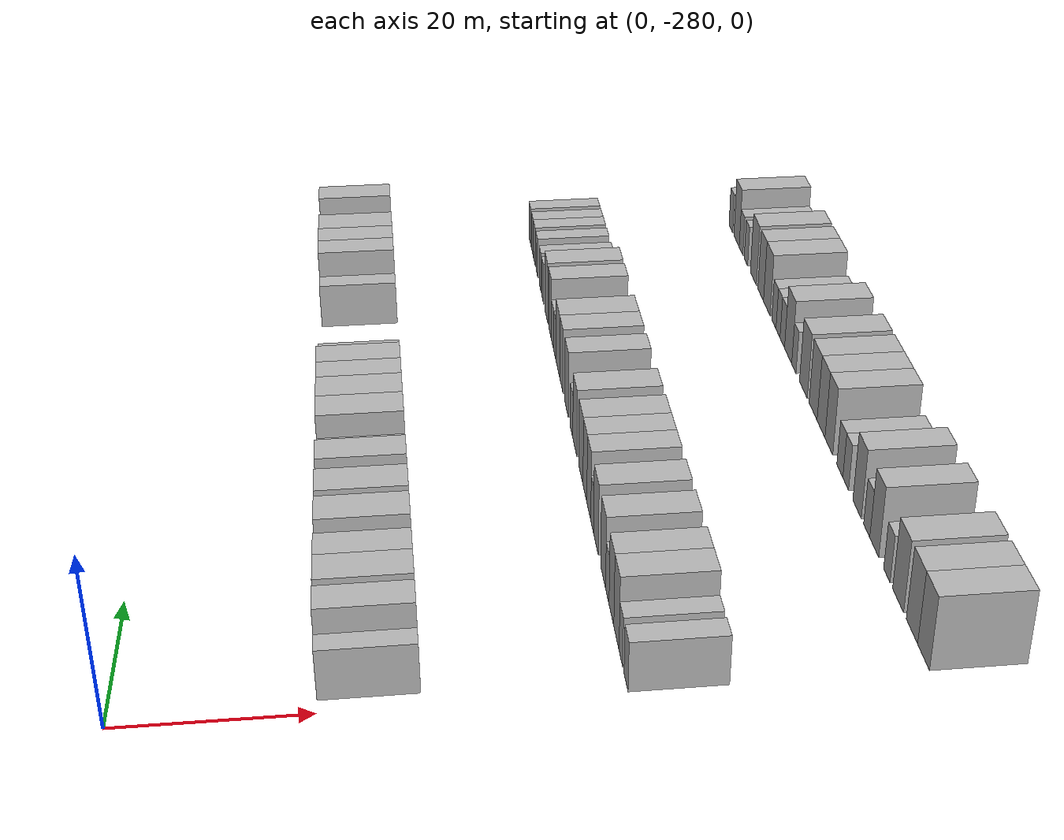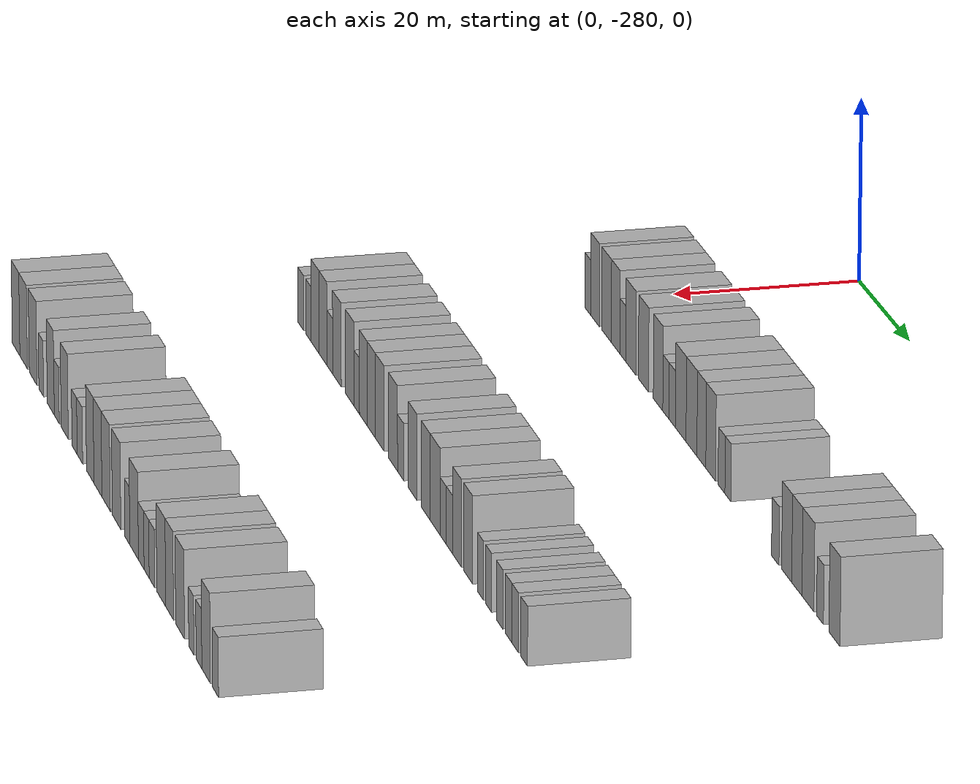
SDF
<sdf version="1.6">
 <world name="default">
  <model name="building_1">
   <static>1</static>
   <pose>25.0000 -276.7250 0 0.000000 0.000000 0.000000</pose>
   <link name="link">
    <pose>0 0 3.00 0 0 0</pose>
    <collision name="collision"><geometry><box><size>10.0000 2.5499 6.0000</size></box></geometry></collision>
    <visual name="visual">
     <cast_shadows>0</cast_shadows>
     <geometry><box><size>10.0000 2.5499 6.0000</size></box></geometry>
     <material>
      <script>
       <uri>model://HANNAS_wall/materials/scripts</uri>
       <uri>model://HANNAS_wall/materials/textures</uri>
       <name>vrc/HANNAS_wall</name>
      </script>
     </material>
    </visual>
   </link>
  </model>
  <model name="building_2">
   <static>1</static>
   <pose>25.0000 -273.5485 0 0.000000 0.000000 0.000000</pose>
   <link name="link">
    <pose>0 0 4.50 0 0 0</pose>
    <collision name="collision"><geometry><box><size>10.0000 3.8032 9.0000</size></box></geometry></collision>
    <visual name="visual">
     <cast_shadows>0</cast_shadows>
     <geometry><box><size>10.0000 3.8032 9.0000</size></box></geometry>
     <material>
      <script>
       <uri>model://HANNAS_wall/materials/scripts</uri>
       <uri>model://HANNAS_wall/materials/textures</uri>
       <name>vrc/HANNAS_wall</name>
      </script>
     </material>
    </visual>
   </link>
  </model>
  <model name="building_3">
   <static>1</static>
   <pose>25.0000 -268.5318 0 0.000000 0.000000 0.000000</pose>
   <link name="link">
    <pose>0 0 4.50 0 0 0</pose>
    <collision name="collision"><geometry><box><size>10.0000 4.2303 9.0000</size></box></geometry></collision>
    <visual name="visual">
     <cast_shadows>0</cast_shadows>
     <geometry><box><size>10.0000 4.2303 9.0000</size></box></geometry>
     <material>
      <script>
       <uri>model://HANNAS_wall/materials/scripts</uri>
       <uri>model://HANNAS_wall/materials/textures</uri>
       <name>vrc/HANNAS_wall</name>
      </script>
     </material>
    </visual>
   </link>
  </model>
  <model name="building_4">
   <static>1</static>
   <pose>25.0000 -264.5383 0 0.000000 0.000000 0.000000</pose>
   <link name="link">
    <pose>0 0 4.50 0 0 0</pose>
    <collision name="collision"><geometry><box><size>10.0000 3.7567 9.0000</size></box></geometry></collision>
    <visual name="visual">
     <cast_shadows>0</cast_shadows>
     <geometry><box><size>10.0000 3.7567 9.0000</size></box></geometry>
     <material>
      <script>
       <uri>model://HANNAS_wall/materials/scripts</uri>
       <uri>model://HANNAS_wall/materials/textures</uri>
       <name>vrc/HANNAS_wall</name>
      </script>
     </material>
    </visual>
   </link>
  </model>
  <model name="building_5">
   <static>1</static>
   <pose>25.0000 -261.4245 0 0.000000 0.000000 0.000000</pose>
   <link name="link">
    <pose>0 0 3.00 0 0 0</pose>
    <collision name="collision"><geometry><box><size>10.0000 2.4708 6.0000</size></box></geometry></collision>
    <visual name="visual">
     <cast_shadows>0</cast_shadows>
     <geometry><box><size>10.0000 2.4708 6.0000</size></box></geometry>
     <material>
      <script>
       <uri>model://HANNAS_wall/materials/scripts</uri>
       <uri>model://HANNAS_wall/materials/textures</uri>
       <name>vrc/HANNAS_wall</name>
      </script>
     </material>
    </visual>
   </link>
  </model>
  <model name="building_6">
   <static>1</static>
   <pose>25.0000 -257.9877 0 0.000000 0.000000 0.000000</pose>
   <link name="link">
    <pose>0 0 4.50 0 0 0</pose>
    <collision name="collision"><geometry><box><size>10.0000 4.4028 9.0000</size></box></geometry></collision>
    <visual name="visual">
     <cast_shadows>0</cast_shadows>
     <geometry><box><size>10.0000 4.4028 9.0000</size></box></geometry>
     <material>
      <script>
       <uri>model://HANNAS_wall/materials/scripts</uri>
       <uri>model://HANNAS_wall/materials/textures</uri>
       <name>vrc/HANNAS_wall</name>
      </script>
     </material>
    </visual>
   </link>
  </model>
  <model name="building_7">
   <static>1</static>
   <pose>25.0000 -252.6310 0 0.000000 0.000000 0.000000</pose>
   <link name="link">
    <pose>0 0 4.50 0 0 0</pose>
    <collision name="collision"><geometry><box><size>10.0000 4.3106 9.0000</size></box></geometry></collision>
    <visual name="visual">
     <cast_shadows>0</cast_shadows>
     <geometry><box><size>10.0000 4.3106 9.0000</size></box></geometry>
     <material>
      <script>
       <uri>model://HANNAS_wall/materials/scripts</uri>
       <uri>model://HANNAS_wall/materials/textures</uri>
       <name>vrc/HANNAS_wall</name>
      </script>
     </material>
    </visual>
   </link>
  </model>
  <model name="building_8">
   <static>1</static>
   <pose>25.0000 -246.4828 0 0.000000 0.000000 0.000000</pose>
   <link name="link">
    <pose>0 0 4.50 0 0 0</pose>
    <collision name="collision"><geometry><box><size>10.0000 3.9860 9.0000</size></box></geometry></collision>
    <visual name="visual">
     <cast_shadows>0</cast_shadows>
     <geometry><box><size>10.0000 3.9860 9.0000</size></box></geometry>
     <material>
      <script>
       <uri>model://HANNAS_wall/materials/scripts</uri>
       <uri>model://HANNAS_wall/materials/textures</uri>
       <name>vrc/HANNAS_wall</name>
      </script>
     </material>
    </visual>
   </link>
  </model>
  <model name="building_9">
   <static>1</static>
   <pose>25.0000 -243.1892 0 0.000000 0.000000 0.000000</pose>
   <link name="link">
    <pose>0 0 3.00 0 0 0</pose>
    <collision name="collision"><geometry><box><size>10.0000 2.6011 6.0000</size></box></geometry></collision>
    <visual name="visual">
     <cast_shadows>0</cast_shadows>
     <geometry><box><size>10.0000 2.6011 6.0000</size></box></geometry>
     <material>
      <script>
       <uri>model://HANNAS_wall/materials/scripts</uri>
       <uri>model://HANNAS_wall/materials/textures</uri>
       <name>vrc/HANNAS_wall</name>
      </script>
     </material>
    </visual>
   </link>
  </model>
  <model name="building_10">
   <static>1</static>
   <pose>25.0000 -240.5972 0 0.000000 0.000000 0.000000</pose>
   <link name="link">
    <pose>0 0 3.00 0 0 0</pose>
    <collision name="collision"><geometry><box><size>10.0000 2.5830 6.0000</size></box></geometry></collision>
    <visual name="visual">
     <cast_shadows>0</cast_shadows>
     <geometry><box><size>10.0000 2.5830 6.0000</size></box></geometry>
     <material>
      <script>
       <uri>model://HANNAS_wall/materials/scripts</uri>
       <uri>model://HANNAS_wall/materials/textures</uri>
       <name>vrc/HANNAS_wall</name>
      </script>
     </material>
    </visual>
   </link>
  </model>
  <model name="building_11">
   <static>1</static>
   <pose>25.0000 -237.0894 0 0.000000 0.000000 0.000000</pose>
   <link name="link">
    <pose>0 0 4.50 0 0 0</pose>
    <collision name="collision"><geometry><box><size>10.0000 4.4326 9.0000</size></box></geometry></collision>
    <visual name="visual">
     <cast_shadows>0</cast_shadows>
     <geometry><box><size>10.0000 4.4326 9.0000</size></box></geometry>
     <material>
      <script>
       <uri>model://HANNAS_wall/materials/scripts</uri>
       <uri>model://HANNAS_wall/materials/textures</uri>
       <name>vrc/HANNAS_wall</name>
      </script>
     </material>
    </visual>
   </link>
  </model>
  <model name="building_12">
   <static>1</static>
   <pose>25.0000 -232.6515 0 0.000000 0.000000 0.000000</pose>
   <link name="link">
    <pose>0 0 4.50 0 0 0</pose>
    <collision name="collision"><geometry><box><size>10.0000 4.4432 9.0000</size></box></geometry></collision>
    <visual name="visual">
     <cast_shadows>0</cast_shadows>
     <geometry><box><size>10.0000 4.4432 9.0000</size></box></geometry>
     <material>
      <script>
       <uri>model://HANNAS_wall/materials/scripts</uri>
       <uri>model://HANNAS_wall/materials/textures</uri>
       <name>vrc/HANNAS_wall</name>
      </script>
     </material>
    </visual>
   </link>
  </model>
  <model name="building_13">
   <static>1</static>
   <pose>25.0000 -228.6149 0 0.000000 0.000000 0.000000</pose>
   <link name="link">
    <pose>0 0 4.50 0 0 0</pose>
    <collision name="collision"><geometry><box><size>10.0000 3.6301 9.0000</size></box></geometry></collision>
    <visual name="visual">
     <cast_shadows>0</cast_shadows>
     <geometry><box><size>10.0000 3.6301 9.0000</size></box></geometry>
     <material>
      <script>
       <uri>model://HANNAS_wall/materials/scripts</uri>
       <uri>model://HANNAS_wall/materials/textures</uri>
       <name>vrc/HANNAS_wall</name>
      </script>
     </material>
    </visual>
   </link>
  </model>
  <model name="building_14">
   <static>1</static>
   <pose>25.0000 -224.8320 0 0.000000 0.000000 0.000000</pose>
   <link name="link">
    <pose>0 0 4.50 0 0 0</pose>
    <collision name="collision"><geometry><box><size>10.0000 3.9356 9.0000</size></box></geometry></collision>
    <visual name="visual">
     <cast_shadows>0</cast_shadows>
     <geometry><box><size>10.0000 3.9356 9.0000</size></box></geometry>
     <material>
      <script>
       <uri>model://HANNAS_wall/materials/scripts</uri>
       <uri>model://HANNAS_wall/materials/textures</uri>
       <name>vrc/HANNAS_wall</name>
      </script>
     </material>
    </visual>
   </link>
  </model>
  <model name="building_15">
   <static>1</static>
   <pose>25.0000 -220.4967 0 0.000000 0.000000 0.000000</pose>
   <link name="link">
    <pose>0 0 3.00 0 0 0</pose>
    <collision name="collision"><geometry><box><size>10.0000 2.7349 6.0000</size></box></geometry></collision>
    <visual name="visual">
     <cast_shadows>0</cast_shadows>
     <geometry><box><size>10.0000 2.7349 6.0000</size></box></geometry>
     <material>
      <script>
       <uri>model://HANNAS_wall/materials/scripts</uri>
       <uri>model://HANNAS_wall/materials/textures</uri>
       <name>vrc/HANNAS_wall</name>
      </script>
     </material>
    </visual>
   </link>
  </model>
  <model name="building_16">
   <static>1</static>
   <pose>25.0000 -217.9195 0 0.000000 0.000000 0.000000</pose>
   <link name="link">
    <pose>0 0 3.00 0 0 0</pose>
    <collision name="collision"><geometry><box><size>10.0000 2.4194 6.0000</size></box></geometry></collision>
    <visual name="visual">
     <cast_shadows>0</cast_shadows>
     <geometry><box><size>10.0000 2.4194 6.0000</size></box></geometry>
     <material>
      <script>
       <uri>model://HANNAS_wall/materials/scripts</uri>
       <uri>model://HANNAS_wall/materials/textures</uri>
       <name>vrc/HANNAS_wall</name>
      </script>
     </material>
    </visual>
   </link>
  </model>
  <model name="building_17">
   <static>1</static>
   <pose>25.0000 -199.4089 0 0.000000 0.000000 0.000000</pose>
   <link name="link">
    <pose>0 0 3.00 0 0 0</pose>
    <collision name="collision"><geometry><box><size>10.0000 2.8673 6.0000</size></box></geometry></collision>
    <visual name="visual">
     <cast_shadows>0</cast_shadows>
     <geometry><box><size>10.0000 2.8673 6.0000</size></box></geometry>
     <material>
      <script>
       <uri>model://HANNAS_wall/materials/scripts</uri>
       <uri>model://HANNAS_wall/materials/textures</uri>
       <name>vrc/HANNAS_wall</name>
      </script>
     </material>
    </visual>
   </link>
  </model>
  <model name="building_18">
   <static>1</static>
   <pose>25.0000 -195.0465 0 0.000000 0.000000 0.000000</pose>
   <link name="link">
    <pose>0 0 4.50 0 0 0</pose>
    <collision name="collision"><geometry><box><size>10.0000 3.8573 9.0000</size></box></geometry></collision>
    <visual name="visual">
     <cast_shadows>0</cast_shadows>
     <geometry><box><size>10.0000 3.8573 9.0000</size></box></geometry>
     <material>
      <script>
       <uri>model://HANNAS_wall/materials/scripts</uri>
       <uri>model://HANNAS_wall/materials/textures</uri>
       <name>vrc/HANNAS_wall</name>
      </script>
     </material>
    </visual>
   </link>
  </model>
  <model name="building_19">
   <static>1</static>
   <pose>25.0000 -191.1698 0 0.000000 0.000000 0.000000</pose>
   <link name="link">
    <pose>0 0 4.50 0 0 0</pose>
    <collision name="collision"><geometry><box><size>10.0000 3.8960 9.0000</size></box></geometry></collision>
    <visual name="visual">
     <cast_shadows>0</cast_shadows>
     <geometry><box><size>10.0000 3.8960 9.0000</size></box></geometry>
     <material>
      <script>
       <uri>model://HANNAS_wall/materials/scripts</uri>
       <uri>model://HANNAS_wall/materials/textures</uri>
       <name>vrc/HANNAS_wall</name>
      </script>
     </material>
    </visual>
   </link>
  </model>
  <model name="building_20">
   <static>1</static>
   <pose>25.0000 -186.9760 0 0.000000 0.000000 0.000000</pose>
   <link name="link">
    <pose>0 0 4.50 0 0 0</pose>
    <collision name="collision"><geometry><box><size>10.0000 4.4915 9.0000</size></box></geometry></collision>
    <visual name="visual">
     <cast_shadows>0</cast_shadows>
     <geometry><box><size>10.0000 4.4915 9.0000</size></box></geometry>
     <material>
      <script>
       <uri>model://HANNAS_wall/materials/scripts</uri>
       <uri>model://HANNAS_wall/materials/textures</uri>
       <name>vrc/HANNAS_wall</name>
      </script>
     </material>
    </visual>
   </link>
  </model>
  <model name="building_21">
   <static>1</static>
   <pose>25.0000 -182.4449 0 0.000000 0.000000 0.000000</pose>
   <link name="link">
    <pose>0 0 3.00 0 0 0</pose>
    <collision name="collision"><geometry><box><size>10.0000 2.5707 6.0000</size></box></geometry></collision>
    <visual name="visual">
     <cast_shadows>0</cast_shadows>
     <geometry><box><size>10.0000 2.5707 6.0000</size></box></geometry>
     <material>
      <script>
       <uri>model://HANNAS_wall/materials/scripts</uri>
       <uri>model://HANNAS_wall/materials/textures</uri>
       <name>vrc/HANNAS_wall</name>
      </script>
     </material>
    </visual>
   </link>
  </model>
  <model name="building_22">
   <static>1</static>
   <pose>25.0000 -177.0999 0 0.000000 0.000000 0.000000</pose>
   <link name="link">
    <pose>0 0 4.50 0 0 0</pose>
    <collision name="collision"><geometry><box><size>10.0000 4.1193 9.0000</size></box></geometry></collision>
    <visual name="visual">
     <cast_shadows>0</cast_shadows>
     <geometry><box><size>10.0000 4.1193 9.0000</size></box></geometry>
     <material>
      <script>
       <uri>model://HANNAS_wall/materials/scripts</uri>
       <uri>model://HANNAS_wall/materials/textures</uri>
       <name>vrc/HANNAS_wall</name>
      </script>
     </material>
    </visual>
   </link>
  </model>
  <model name="building_140">
   <static>1</static>
   <pose>55.0000 -278.5639 0 0.000000 0.000000 0.000000</pose>
   <link name="link">
    <pose>0 0 3.00 0 0 0</pose>
    <collision name="collision"><geometry><box><size>10.0000 2.8722 6.0000</size></box></geometry></collision>
    <visual name="visual">
     <cast_shadows>0</cast_shadows>
     <geometry><box><size>10.0000 2.8722 6.0000</size></box></geometry>
     <material>
      <script>
       <uri>model://HANNAS_wall/materials/scripts</uri>
       <uri>model://HANNAS_wall/materials/textures</uri>
       <name>vrc/HANNAS_wall</name>
      </script>
     </material>
    </visual>
   </link>
  </model>
  <model name="building_141">
   <static>1</static>
   <pose>55.0000 -274.8090 0 0.000000 0.000000 0.000000</pose>
   <link name="link">
    <pose>0 0 3.00 0 0 0</pose>
    <collision name="collision"><geometry><box><size>10.0000 2.6376 6.0000</size></box></geometry></collision>
    <visual name="visual">
     <cast_shadows>0</cast_shadows>
     <geometry><box><size>10.0000 2.6376 6.0000</size></box></geometry>
     <material>
      <script>
       <uri>model://HANNAS_wall/materials/scripts</uri>
       <uri>model://HANNAS_wall/materials/textures</uri>
       <name>vrc/HANNAS_wall</name>
      </script>
     </material>
    </visual>
   </link>
  </model>
  <model name="building_142">
   <static>1</static>
   <pose>55.0000 -271.5252 0 0.000000 0.000000 0.000000</pose>
   <link name="link">
    <pose>0 0 4.50 0 0 0</pose>
    <collision name="collision"><geometry><box><size>10.0000 3.9299 9.0000</size></box></geometry></collision>
    <visual name="visual">
     <cast_shadows>0</cast_shadows>
     <geometry><box><size>10.0000 3.9299 9.0000</size></box></geometry>
     <material>
      <script>
       <uri>model://HANNAS_wall/materials/scripts</uri>
       <uri>model://HANNAS_wall/materials/textures</uri>
       <name>vrc/HANNAS_wall</name>
      </script>
     </material>
    </visual>
   </link>
  </model>
  <model name="building_143">
   <static>1</static>
   <pose>55.0000 -267.6933 0 0.000000 0.000000 0.000000</pose>
   <link name="link">
    <pose>0 0 4.50 0 0 0</pose>
    <collision name="collision"><geometry><box><size>10.0000 3.7339 9.0000</size></box></geometry></collision>
    <visual name="visual">
     <cast_shadows>0</cast_shadows>
     <geometry><box><size>10.0000 3.7339 9.0000</size></box></geometry>
     <material>
      <script>
       <uri>model://HANNAS_wall/materials/scripts</uri>
       <uri>model://HANNAS_wall/materials/textures</uri>
       <name>vrc/HANNAS_wall</name>
      </script>
     </material>
    </visual>
   </link>
  </model>
  <model name="building_144">
   <static>1</static>
   <pose>55.0000 -264.4380 0 0.000000 0.000000 0.000000</pose>
   <link name="link">
    <pose>0 0 3.00 0 0 0</pose>
    <collision name="collision"><geometry><box><size>10.0000 2.7768 6.0000</size></box></geometry></collision>
    <visual name="visual">
     <cast_shadows>0</cast_shadows>
     <geometry><box><size>10.0000 2.7768 6.0000</size></box></geometry>
     <material>
      <script>
       <uri>model://HANNAS_wall/materials/scripts</uri>
       <uri>model://HANNAS_wall/materials/textures</uri>
       <name>vrc/HANNAS_wall</name>
      </script>
     </material>
    </visual>
   </link>
  </model>
  <model name="building_145">
   <static>1</static>
   <pose>55.0000 -261.0116 0 0.000000 0.000000 0.000000</pose>
   <link name="link">
    <pose>0 0 4.50 0 0 0</pose>
    <collision name="collision"><geometry><box><size>10.0000 4.0759 9.0000</size></box></geometry></collision>
    <visual name="visual">
     <cast_shadows>0</cast_shadows>
     <geometry><box><size>10.0000 4.0759 9.0000</size></box></geometry>
     <material>
      <script>
       <uri>model://HANNAS_wall/materials/scripts</uri>
       <uri>model://HANNAS_wall/materials/textures</uri>
       <name>vrc/HANNAS_wall</name>
      </script>
     </material>
    </visual>
   </link>
  </model>
  <model name="building_146">
   <static>1</static>
   <pose>55.0000 -254.9062 0 0.000000 0.000000 0.000000</pose>
   <link name="link">
    <pose>0 0 4.50 0 0 0</pose>
    <collision name="collision"><geometry><box><size>10.0000 4.1348 9.0000</size></box></geometry></collision>
    <visual name="visual">
     <cast_shadows>0</cast_shadows>
     <geometry><box><size>10.0000 4.1348 9.0000</size></box></geometry>
     <material>
      <script>
       <uri>model://HANNAS_wall/materials/scripts</uri>
       <uri>model://HANNAS_wall/materials/textures</uri>
       <name>vrc/HANNAS_wall</name>
      </script>
     </material>
    </visual>
   </link>
  </model>
  <model name="building_147">
   <static>1</static>
   <pose>55.0000 -251.5833 0 0.000000 0.000000 0.000000</pose>
   <link name="link">
    <pose>0 0 3.00 0 0 0</pose>
    <collision name="collision"><geometry><box><size>10.0000 2.5111 6.0000</size></box></geometry></collision>
    <visual name="visual">
     <cast_shadows>0</cast_shadows>
     <geometry><box><size>10.0000 2.5111 6.0000</size></box></geometry>
     <material>
      <script>
       <uri>model://HANNAS_wall/materials/scripts</uri>
       <uri>model://HANNAS_wall/materials/textures</uri>
       <name>vrc/HANNAS_wall</name>
      </script>
     </material>
    </visual>
   </link>
  </model>
  <model name="building_148">
   <static>1</static>
   <pose>55.0000 -248.5088 0 0.000000 0.000000 0.000000</pose>
   <link name="link">
    <pose>0 0 4.50 0 0 0</pose>
    <collision name="collision"><geometry><box><size>10.0000 3.6379 9.0000</size></box></geometry></collision>
    <visual name="visual">
     <cast_shadows>0</cast_shadows>
     <geometry><box><size>10.0000 3.6379 9.0000</size></box></geometry>
     <material>
      <script>
       <uri>model://HANNAS_wall/materials/scripts</uri>
       <uri>model://HANNAS_wall/materials/textures</uri>
       <name>vrc/HANNAS_wall</name>
      </script>
     </material>
    </visual>
   </link>
  </model>
  <model name="building_149">
   <static>1</static>
   <pose>55.0000 -244.8402 0 0.000000 0.000000 0.000000</pose>
   <link name="link">
    <pose>0 0 4.50 0 0 0</pose>
    <collision name="collision"><geometry><box><size>10.0000 3.6993 9.0000</size></box></geometry></collision>
    <visual name="visual">
     <cast_shadows>0</cast_shadows>
     <geometry><box><size>10.0000 3.6993 9.0000</size></box></geometry>
     <material>
      <script>
       <uri>model://HANNAS_wall/materials/scripts</uri>
       <uri>model://HANNAS_wall/materials/textures</uri>
       <name>vrc/HANNAS_wall</name>
      </script>
     </material>
    </visual>
   </link>
  </model>
  <model name="building_150">
   <static>1</static>
   <pose>55.0000 -240.9382 0 0.000000 0.000000 0.000000</pose>
   <link name="link">
    <pose>0 0 4.50 0 0 0</pose>
    <collision name="collision"><geometry><box><size>10.0000 4.1047 9.0000</size></box></geometry></collision>
    <visual name="visual">
     <cast_shadows>0</cast_shadows>
     <geometry><box><size>10.0000 4.1047 9.0000</size></box></geometry>
     <material>
      <script>
       <uri>model://HANNAS_wall/materials/scripts</uri>
       <uri>model://HANNAS_wall/materials/textures</uri>
       <name>vrc/HANNAS_wall</name>
      </script>
     </material>
    </visual>
   </link>
  </model>
  <model name="building_151">
   <static>1</static>
   <pose>55.0000 -234.8003 0 0.000000 0.000000 0.000000</pose>
   <link name="link">
    <pose>0 0 4.50 0 0 0</pose>
    <collision name="collision"><geometry><box><size>10.0000 4.1713 9.0000</size></box></geometry></collision>
    <visual name="visual">
     <cast_shadows>0</cast_shadows>
     <geometry><box><size>10.0000 4.1713 9.0000</size></box></geometry>
     <material>
      <script>
       <uri>model://HANNAS_wall/materials/scripts</uri>
       <uri>model://HANNAS_wall/materials/textures</uri>
       <name>vrc/HANNAS_wall</name>
      </script>
     </material>
    </visual>
   </link>
  </model>
  <model name="building_152">
   <static>1</static>
   <pose>55.0000 -231.2804 0 0.000000 0.000000 0.000000</pose>
   <link name="link">
    <pose>0 0 3.00 0 0 0</pose>
    <collision name="collision"><geometry><box><size>10.0000 2.8684 6.0000</size></box></geometry></collision>
    <visual name="visual">
     <cast_shadows>0</cast_shadows>
     <geometry><box><size>10.0000 2.8684 6.0000</size></box></geometry>
     <material>
      <script>
       <uri>model://HANNAS_wall/materials/scripts</uri>
       <uri>model://HANNAS_wall/materials/textures</uri>
       <name>vrc/HANNAS_wall</name>
      </script>
     </material>
    </visual>
   </link>
  </model>
  <model name="building_153">
   <static>1</static>
   <pose>55.0000 -225.8944 0 0.000000 0.000000 0.000000</pose>
   <link name="link">
    <pose>0 0 4.50 0 0 0</pose>
    <collision name="collision"><geometry><box><size>10.0000 3.9038 9.0000</size></box></geometry></collision>
    <visual name="visual">
     <cast_shadows>0</cast_shadows>
     <geometry><box><size>10.0000 3.9038 9.0000</size></box></geometry>
     <material>
      <script>
       <uri>model://HANNAS_wall/materials/scripts</uri>
       <uri>model://HANNAS_wall/materials/textures</uri>
       <name>vrc/HANNAS_wall</name>
      </script>
     </material>
    </visual>
   </link>
  </model>
  <model name="building_154">
   <static>1</static>
   <pose>55.0000 -220.0046 0 0.000000 0.000000 0.000000</pose>
   <link name="link">
    <pose>0 0 4.50 0 0 0</pose>
    <collision name="collision"><geometry><box><size>10.0000 3.8757 9.0000</size></box></geometry></collision>
    <visual name="visual">
     <cast_shadows>0</cast_shadows>
     <geometry><box><size>10.0000 3.8757 9.0000</size></box></geometry>
     <material>
      <script>
       <uri>model://HANNAS_wall/materials/scripts</uri>
       <uri>model://HANNAS_wall/materials/textures</uri>
       <name>vrc/HANNAS_wall</name>
      </script>
     </material>
    </visual>
   </link>
  </model>
  <model name="building_155">
   <static>1</static>
   <pose>55.0000 -215.8731 0 0.000000 0.000000 0.000000</pose>
   <link name="link">
    <pose>0 0 4.50 0 0 0</pose>
    <collision name="collision"><geometry><box><size>10.0000 4.3874 9.0000</size></box></geometry></collision>
    <visual name="visual">
     <cast_shadows>0</cast_shadows>
     <geometry><box><size>10.0000 4.3874 9.0000</size></box></geometry>
     <material>
      <script>
       <uri>model://HANNAS_wall/materials/scripts</uri>
       <uri>model://HANNAS_wall/materials/textures</uri>
       <name>vrc/HANNAS_wall</name>
      </script>
     </material>
    </visual>
   </link>
  </model>
  <model name="building_156">
   <static>1</static>
   <pose>55.0000 -212.3606 0 0.000000 0.000000 0.000000</pose>
   <link name="link">
    <pose>0 0 3.00 0 0 0</pose>
    <collision name="collision"><geometry><box><size>10.0000 2.6376 6.0000</size></box></geometry></collision>
    <visual name="visual">
     <cast_shadows>0</cast_shadows>
     <geometry><box><size>10.0000 2.6376 6.0000</size></box></geometry>
     <material>
      <script>
       <uri>model://HANNAS_wall/materials/scripts</uri>
       <uri>model://HANNAS_wall/materials/textures</uri>
       <name>vrc/HANNAS_wall</name>
      </script>
     </material>
    </visual>
   </link>
  </model>
  <model name="building_157">
   <static>1</static>
   <pose>55.0000 -209.5592 0 0.000000 0.000000 0.000000</pose>
   <link name="link">
    <pose>0 0 3.00 0 0 0</pose>
    <collision name="collision"><geometry><box><size>10.0000 2.9651 6.0000</size></box></geometry></collision>
    <visual name="visual">
     <cast_shadows>0</cast_shadows>
     <geometry><box><size>10.0000 2.9651 6.0000</size></box></geometry>
     <material>
      <script>
       <uri>model://HANNAS_wall/materials/scripts</uri>
       <uri>model://HANNAS_wall/materials/textures</uri>
       <name>vrc/HANNAS_wall</name>
      </script>
     </material>
    </visual>
   </link>
  </model>
  <model name="building_158">
   <static>1</static>
   <pose>55.0000 -206.2237 0 0.000000 0.000000 0.000000</pose>
   <link name="link">
    <pose>0 0 4.50 0 0 0</pose>
    <collision name="collision"><geometry><box><size>10.0000 3.7059 9.0000</size></box></geometry></collision>
    <visual name="visual">
     <cast_shadows>0</cast_shadows>
     <geometry><box><size>10.0000 3.7059 9.0000</size></box></geometry>
     <material>
      <script>
       <uri>model://HANNAS_wall/materials/scripts</uri>
       <uri>model://HANNAS_wall/materials/textures</uri>
       <name>vrc/HANNAS_wall</name>
      </script>
     </material>
    </visual>
   </link>
  </model>
  <model name="building_159">
   <static>1</static>
   <pose>55.0000 -201.4409 0 0.000000 0.000000 0.000000</pose>
   <link name="link">
    <pose>0 0 4.50 0 0 0</pose>
    <collision name="collision"><geometry><box><size>10.0000 3.8598 9.0000</size></box></geometry></collision>
    <visual name="visual">
     <cast_shadows>0</cast_shadows>
     <geometry><box><size>10.0000 3.8598 9.0000</size></box></geometry>
     <material>
      <script>
       <uri>model://HANNAS_wall/materials/scripts</uri>
       <uri>model://HANNAS_wall/materials/textures</uri>
       <name>vrc/HANNAS_wall</name>
      </script>
     </material>
    </visual>
   </link>
  </model>
  <model name="building_160">
   <static>1</static>
   <pose>55.0000 -196.2289 0 0.000000 0.000000 0.000000</pose>
   <link name="link">
    <pose>0 0 3.00 0 0 0</pose>
    <collision name="collision"><geometry><box><size>10.0000 2.5640 6.0000</size></box></geometry></collision>
    <visual name="visual">
     <cast_shadows>0</cast_shadows>
     <geometry><box><size>10.0000 2.5640 6.0000</size></box></geometry>
     <material>
      <script>
       <uri>model://HANNAS_wall/materials/scripts</uri>
       <uri>model://HANNAS_wall/materials/textures</uri>
       <name>vrc/HANNAS_wall</name>
      </script>
     </material>
    </visual>
   </link>
  </model>
  <model name="building_161">
   <static>1</static>
   <pose>55.0000 -192.7100 0 0.000000 0.000000 0.000000</pose>
   <link name="link">
    <pose>0 0 3.00 0 0 0</pose>
    <collision name="collision"><geometry><box><size>10.0000 2.4739 6.0000</size></box></geometry></collision>
    <visual name="visual">
     <cast_shadows>0</cast_shadows>
     <geometry><box><size>10.0000 2.4739 6.0000</size></box></geometry>
     <material>
      <script>
       <uri>model://HANNAS_wall/materials/scripts</uri>
       <uri>model://HANNAS_wall/materials/textures</uri>
       <name>vrc/HANNAS_wall</name>
      </script>
     </material>
    </visual>
   </link>
  </model>
  <model name="building_162">
   <static>1</static>
   <pose>55.0000 -188.1226 0 0.000000 0.000000 0.000000</pose>
   <link name="link">
    <pose>0 0 3.00 0 0 0</pose>
    <collision name="collision"><geometry><box><size>10.0000 2.7008 6.0000</size></box></geometry></collision>
    <visual name="visual">
     <cast_shadows>0</cast_shadows>
     <geometry><box><size>10.0000 2.7008 6.0000</size></box></geometry>
     <material>
      <script>
       <uri>model://HANNAS_wall/materials/scripts</uri>
       <uri>model://HANNAS_wall/materials/textures</uri>
       <name>vrc/HANNAS_wall</name>
      </script>
     </material>
    </visual>
   </link>
  </model>
  <model name="building_163">
   <static>1</static>
   <pose>55.0000 -184.3727 0 0.000000 0.000000 0.000000</pose>
   <link name="link">
    <pose>0 0 3.00 0 0 0</pose>
    <collision name="collision"><geometry><box><size>10.0000 2.7990 6.0000</size></box></geometry></collision>
    <visual name="visual">
     <cast_shadows>0</cast_shadows>
     <geometry><box><size>10.0000 2.7990 6.0000</size></box></geometry>
     <material>
      <script>
       <uri>model://HANNAS_wall/materials/scripts</uri>
       <uri>model://HANNAS_wall/materials/textures</uri>
       <name>vrc/HANNAS_wall</name>
      </script>
     </material>
    </visual>
   </link>
  </model>
  <model name="building_164">
   <static>1</static>
   <pose>55.0000 -181.6175 0 0.000000 0.000000 0.000000</pose>
   <link name="link">
    <pose>0 0 3.00 0 0 0</pose>
    <collision name="collision"><geometry><box><size>10.0000 2.7114 6.0000</size></box></geometry></collision>
    <visual name="visual">
     <cast_shadows>0</cast_shadows>
     <geometry><box><size>10.0000 2.7114 6.0000</size></box></geometry>
     <material>
      <script>
       <uri>model://HANNAS_wall/materials/scripts</uri>
       <uri>model://HANNAS_wall/materials/textures</uri>
       <name>vrc/HANNAS_wall</name>
      </script>
     </material>
    </visual>
   </link>
  </model>
  <model name="building_165">
   <static>1</static>
   <pose>55.0000 -177.8883 0 0.000000 0.000000 0.000000</pose>
   <link name="link">
    <pose>0 0 3.00 0 0 0</pose>
    <collision name="collision"><geometry><box><size>10.0000 2.7468 6.0000</size></box></geometry></collision>
    <visual name="visual">
     <cast_shadows>0</cast_shadows>
     <geometry><box><size>10.0000 2.7468 6.0000</size></box></geometry>
     <material>
      <script>
       <uri>model://HANNAS_wall/materials/scripts</uri>
       <uri>model://HANNAS_wall/materials/textures</uri>
       <name>vrc/HANNAS_wall</name>
      </script>
     </material>
    </visual>
   </link>
  </model>
  <model name="building_288">
   <static>1</static>
   <pose>85.0000 -277.8977 0 0.000000 0.000000 0.000000</pose>
   <link name="link">
    <pose>0 0 4.50 0 0 0</pose>
    <collision name="collision"><geometry><box><size>10.0000 4.2045 9.0000</size></box></geometry></collision>
    <visual name="visual">
     <cast_shadows>0</cast_shadows>
     <geometry><box><size>10.0000 4.2045 9.0000</size></box></geometry>
     <material>
      <script>
       <uri>model://HANNAS_wall/materials/scripts</uri>
       <uri>model://HANNAS_wall/materials/textures</uri>
       <name>vrc/HANNAS_wall</name>
      </script>
     </material>
    </visual>
   </link>
  </model>
  <model name="building_289">
   <static>1</static>
   <pose>85.0000 -273.6924 0 0.000000 0.000000 0.000000</pose>
   <link name="link">
    <pose>0 0 4.50 0 0 0</pose>
    <collision name="collision"><geometry><box><size>10.0000 4.2061 9.0000</size></box></geometry></collision>
    <visual name="visual">
     <cast_shadows>0</cast_shadows>
     <geometry><box><size>10.0000 4.2061 9.0000</size></box></geometry>
     <material>
      <script>
       <uri>model://HANNAS_wall/materials/scripts</uri>
       <uri>model://HANNAS_wall/materials/textures</uri>
       <name>vrc/HANNAS_wall</name>
      </script>
     </material>
    </visual>
   </link>
  </model>
  <model name="building_290">
   <static>1</static>
   <pose>85.0000 -268.4573 0 0.000000 0.000000 0.000000</pose>
   <link name="link">
    <pose>0 0 4.50 0 0 0</pose>
    <collision name="collision"><geometry><box><size>10.0000 4.2641 9.0000</size></box></geometry></collision>
    <visual name="visual">
     <cast_shadows>0</cast_shadows>
     <geometry><box><size>10.0000 4.2641 9.0000</size></box></geometry>
     <material>
      <script>
       <uri>model://HANNAS_wall/materials/scripts</uri>
       <uri>model://HANNAS_wall/materials/textures</uri>
       <name>vrc/HANNAS_wall</name>
      </script>
     </material>
    </visual>
   </link>
  </model>
  <model name="building_291">
   <static>1</static>
   <pose>85.0000 -264.0223 0 0.000000 0.000000 0.000000</pose>
   <link name="link">
    <pose>0 0 3.00 0 0 0</pose>
    <collision name="collision"><geometry><box><size>10.0000 2.6060 6.0000</size></box></geometry></collision>
    <visual name="visual">
     <cast_shadows>0</cast_shadows>
     <geometry><box><size>10.0000 2.6060 6.0000</size></box></geometry>
     <material>
      <script>
       <uri>model://HANNAS_wall/materials/scripts</uri>
       <uri>model://HANNAS_wall/materials/textures</uri>
       <name>vrc/HANNAS_wall</name>
      </script>
     </material>
    </visual>
   </link>
  </model>
  <model name="building_292">
   <static>1</static>
   <pose>85.0000 -258.8198 0 0.000000 0.000000 0.000000</pose>
   <link name="link">
    <pose>0 0 4.50 0 0 0</pose>
    <collision name="collision"><geometry><box><size>10.0000 3.7989 9.0000</size></box></geometry></collision>
    <visual name="visual">
     <cast_shadows>0</cast_shadows>
     <geometry><box><size>10.0000 3.7989 9.0000</size></box></geometry>
     <material>
      <script>
       <uri>model://HANNAS_wall/materials/scripts</uri>
       <uri>model://HANNAS_wall/materials/textures</uri>
       <name>vrc/HANNAS_wall</name>
      </script>
     </material>
    </visual>
   </link>
  </model>
  <model name="building_293">
   <static>1</static>
   <pose>85.0000 -255.5796 0 0.000000 0.000000 0.000000</pose>
   <link name="link">
    <pose>0 0 3.00 0 0 0</pose>
    <collision name="collision"><geometry><box><size>10.0000 2.6816 6.0000</size></box></geometry></collision>
    <visual name="visual">
     <cast_shadows>0</cast_shadows>
     <geometry><box><size>10.0000 2.6816 6.0000</size></box></geometry>
     <material>
      <script>
       <uri>model://HANNAS_wall/materials/scripts</uri>
       <uri>model://HANNAS_wall/materials/textures</uri>
       <name>vrc/HANNAS_wall</name>
      </script>
     </material>
    </visual>
   </link>
  </model>
  <model name="building_294">
   <static>1</static>
   <pose>85.0000 -251.3396 0 0.000000 0.000000 0.000000</pose>
   <link name="link">
    <pose>0 0 4.50 0 0 0</pose>
    <collision name="collision"><geometry><box><size>10.0000 3.7984 9.0000</size></box></geometry></collision>
    <visual name="visual">
     <cast_shadows>0</cast_shadows>
     <geometry><box><size>10.0000 3.7984 9.0000</size></box></geometry>
     <material>
      <script>
       <uri>model://HANNAS_wall/materials/scripts</uri>
       <uri>model://HANNAS_wall/materials/textures</uri>
       <name>vrc/HANNAS_wall</name>
      </script>
     </material>
    </visual>
   </link>
  </model>
  <model name="building_295">
   <static>1</static>
   <pose>85.0000 -246.0887 0 0.000000 0.000000 0.000000</pose>
   <link name="link">
    <pose>0 0 3.00 0 0 0</pose>
    <collision name="collision"><geometry><box><size>10.0000 2.7036 6.0000</size></box></geometry></collision>
    <visual name="visual">
     <cast_shadows>0</cast_shadows>
     <geometry><box><size>10.0000 2.7036 6.0000</size></box></geometry>
     <material>
      <script>
       <uri>model://HANNAS_wall/materials/scripts</uri>
       <uri>model://HANNAS_wall/materials/textures</uri>
       <name>vrc/HANNAS_wall</name>
      </script>
     </material>
    </visual>
   </link>
  </model>
  <model name="building_296">
   <static>1</static>
   <pose>85.0000 -243.2893 0 0.000000 0.000000 0.000000</pose>
   <link name="link">
    <pose>0 0 3.00 0 0 0</pose>
    <collision name="collision"><geometry><box><size>10.0000 2.8952 6.0000</size></box></geometry></collision>
    <visual name="visual">
     <cast_shadows>0</cast_shadows>
     <geometry><box><size>10.0000 2.8952 6.0000</size></box></geometry>
     <material>
      <script>
       <uri>model://HANNAS_wall/materials/scripts</uri>
       <uri>model://HANNAS_wall/materials/textures</uri>
       <name>vrc/HANNAS_wall</name>
      </script>
     </material>
    </visual>
   </link>
  </model>
  <model name="building_297">
   <static>1</static>
   <pose>85.0000 -237.8869 0 0.000000 0.000000 0.000000</pose>
   <link name="link">
    <pose>0 0 4.50 0 0 0</pose>
    <collision name="collision"><geometry><box><size>10.0000 3.9095 9.0000</size></box></geometry></collision>
    <visual name="visual">
     <cast_shadows>0</cast_shadows>
     <geometry><box><size>10.0000 3.9095 9.0000</size></box></geometry>
     <material>
      <script>
       <uri>model://HANNAS_wall/materials/scripts</uri>
       <uri>model://HANNAS_wall/materials/textures</uri>
       <name>vrc/HANNAS_wall</name>
      </script>
     </material>
    </visual>
   </link>
  </model>
  <model name="building_298">
   <static>1</static>
   <pose>85.0000 -233.8742 0 0.000000 0.000000 0.000000</pose>
   <link name="link">
    <pose>0 0 4.50 0 0 0</pose>
    <collision name="collision"><geometry><box><size>10.0000 4.1159 9.0000</size></box></geometry></collision>
    <visual name="visual">
     <cast_shadows>0</cast_shadows>
     <geometry><box><size>10.0000 4.1159 9.0000</size></box></geometry>
     <material>
      <script>
       <uri>model://HANNAS_wall/materials/scripts</uri>
       <uri>model://HANNAS_wall/materials/textures</uri>
       <name>vrc/HANNAS_wall</name>
      </script>
     </material>
    </visual>
   </link>
  </model>
  <model name="building_299">
   <static>1</static>
   <pose>85.0000 -229.6736 0 0.000000 0.000000 0.000000</pose>
   <link name="link">
    <pose>0 0 4.50 0 0 0</pose>
    <collision name="collision"><geometry><box><size>10.0000 4.2855 9.0000</size></box></geometry></collision>
    <visual name="visual">
     <cast_shadows>0</cast_shadows>
     <geometry><box><size>10.0000 4.2855 9.0000</size></box></geometry>
     <material>
      <script>
       <uri>model://HANNAS_wall/materials/scripts</uri>
       <uri>model://HANNAS_wall/materials/textures</uri>
       <name>vrc/HANNAS_wall</name>
      </script>
     </material>
    </visual>
   </link>
  </model>
  <model name="building_300">
   <static>1</static>
   <pose>85.0000 -224.3419 0 0.000000 0.000000 0.000000</pose>
   <link name="link">
    <pose>0 0 4.50 0 0 0</pose>
    <collision name="collision"><geometry><box><size>10.0000 4.3778 9.0000</size></box></geometry></collision>
    <visual name="visual">
     <cast_shadows>0</cast_shadows>
     <geometry><box><size>10.0000 4.3778 9.0000</size></box></geometry>
     <material>
      <script>
       <uri>model://HANNAS_wall/materials/scripts</uri>
       <uri>model://HANNAS_wall/materials/textures</uri>
       <name>vrc/HANNAS_wall</name>
      </script>
     </material>
    </visual>
   </link>
  </model>
  <model name="building_301">
   <static>1</static>
   <pose>85.0000 -218.8974 0 0.000000 0.000000 0.000000</pose>
   <link name="link">
    <pose>0 0 3.00 0 0 0</pose>
    <collision name="collision"><geometry><box><size>10.0000 2.5111 6.0000</size></box></geometry></collision>
    <visual name="visual">
     <cast_shadows>0</cast_shadows>
     <geometry><box><size>10.0000 2.5111 6.0000</size></box></geometry>
     <material>
      <script>
       <uri>model://HANNAS_wall/materials/scripts</uri>
       <uri>model://HANNAS_wall/materials/textures</uri>
       <name>vrc/HANNAS_wall</name>
      </script>
     </material>
    </visual>
   </link>
  </model>
  <model name="building_302">
   <static>1</static>
   <pose>85.0000 -215.4971 0 0.000000 0.000000 0.000000</pose>
   <link name="link">
    <pose>0 0 4.50 0 0 0</pose>
    <collision name="collision"><geometry><box><size>10.0000 4.2896 9.0000</size></box></geometry></collision>
    <visual name="visual">
     <cast_shadows>0</cast_shadows>
     <geometry><box><size>10.0000 4.2896 9.0000</size></box></geometry>
     <material>
      <script>
       <uri>model://HANNAS_wall/materials/scripts</uri>
       <uri>model://HANNAS_wall/materials/textures</uri>
       <name>vrc/HANNAS_wall</name>
      </script>
     </material>
    </visual>
   </link>
  </model>
  <model name="building_303">
   <static>1</static>
   <pose>85.0000 -211.9586 0 0.000000 0.000000 0.000000</pose>
   <link name="link">
    <pose>0 0 3.00 0 0 0</pose>
    <collision name="collision"><geometry><box><size>10.0000 2.7873 6.0000</size></box></geometry></collision>
    <visual name="visual">
     <cast_shadows>0</cast_shadows>
     <geometry><box><size>10.0000 2.7873 6.0000</size></box></geometry>
     <material>
      <script>
       <uri>model://HANNAS_wall/materials/scripts</uri>
       <uri>model://HANNAS_wall/materials/textures</uri>
       <name>vrc/HANNAS_wall</name>
      </script>
     </material>
    </visual>
   </link>
  </model>
  <model name="building_304">
   <static>1</static>
   <pose>85.0000 -209.3051 0 0.000000 0.000000 0.000000</pose>
   <link name="link">
    <pose>0 0 3.00 0 0 0</pose>
    <collision name="collision"><geometry><box><size>10.0000 2.5197 6.0000</size></box></geometry></collision>
    <visual name="visual">
     <cast_shadows>0</cast_shadows>
     <geometry><box><size>10.0000 2.5197 6.0000</size></box></geometry>
     <material>
      <script>
       <uri>model://HANNAS_wall/materials/scripts</uri>
       <uri>model://HANNAS_wall/materials/textures</uri>
       <name>vrc/HANNAS_wall</name>
      </script>
     </material>
    </visual>
   </link>
  </model>
  <model name="building_305">
   <static>1</static>
   <pose>85.0000 -206.6697 0 0.000000 0.000000 0.000000</pose>
   <link name="link">
    <pose>0 0 3.00 0 0 0</pose>
    <collision name="collision"><geometry><box><size>10.0000 2.7510 6.0000</size></box></geometry></collision>
    <visual name="visual">
     <cast_shadows>0</cast_shadows>
     <geometry><box><size>10.0000 2.7510 6.0000</size></box></geometry>
     <material>
      <script>
       <uri>model://HANNAS_wall/materials/scripts</uri>
       <uri>model://HANNAS_wall/materials/textures</uri>
       <name>vrc/HANNAS_wall</name>
      </script>
     </material>
    </visual>
   </link>
  </model>
  <model name="building_306">
   <static>1</static>
   <pose>85.0000 -202.1069 0 0.000000 0.000000 0.000000</pose>
   <link name="link">
    <pose>0 0 4.50 0 0 0</pose>
    <collision name="collision"><geometry><box><size>10.0000 4.3747 9.0000</size></box></geometry></collision>
    <visual name="visual">
     <cast_shadows>0</cast_shadows>
     <geometry><box><size>10.0000 4.3747 9.0000</size></box></geometry>
     <material>
      <script>
       <uri>model://HANNAS_wall/materials/scripts</uri>
       <uri>model://HANNAS_wall/materials/textures</uri>
       <name>vrc/HANNAS_wall</name>
      </script>
     </material>
    </visual>
   </link>
  </model>
  <model name="building_307">
   <static>1</static>
   <pose>85.0000 -198.0222 0 0.000000 0.000000 0.000000</pose>
   <link name="link">
    <pose>0 0 4.50 0 0 0</pose>
    <collision name="collision"><geometry><box><size>10.0000 3.7946 9.0000</size></box></geometry></collision>
    <visual name="visual">
     <cast_shadows>0</cast_shadows>
     <geometry><box><size>10.0000 3.7946 9.0000</size></box></geometry>
     <material>
      <script>
       <uri>model://HANNAS_wall/materials/scripts</uri>
       <uri>model://HANNAS_wall/materials/textures</uri>
       <name>vrc/HANNAS_wall</name>
      </script>
     </material>
    </visual>
   </link>
  </model>
  <model name="building_308">
   <static>1</static>
   <pose>85.0000 -193.0082 0 0.000000 0.000000 0.000000</pose>
   <link name="link">
    <pose>0 0 4.50 0 0 0</pose>
    <collision name="collision"><geometry><box><size>10.0000 4.2334 9.0000</size></box></geometry></collision>
    <visual name="visual">
     <cast_shadows>0</cast_shadows>
     <geometry><box><size>10.0000 4.2334 9.0000</size></box></geometry>
     <material>
      <script>
       <uri>model://HANNAS_wall/materials/scripts</uri>
       <uri>model://HANNAS_wall/materials/textures</uri>
       <name>vrc/HANNAS_wall</name>
      </script>
     </material>
    </visual>
   </link>
  </model>
  <model name="building_309">
   <static>1</static>
   <pose>85.0000 -187.6422 0 0.000000 0.000000 0.000000</pose>
   <link name="link">
    <pose>0 0 3.00 0 0 0</pose>
    <collision name="collision"><geometry><box><size>10.0000 2.4986 6.0000</size></box></geometry></collision>
    <visual name="visual">
     <cast_shadows>0</cast_shadows>
     <geometry><box><size>10.0000 2.4986 6.0000</size></box></geometry>
     <material>
      <script>
       <uri>model://HANNAS_wall/materials/scripts</uri>
       <uri>model://HANNAS_wall/materials/textures</uri>
       <name>vrc/HANNAS_wall</name>
      </script>
     </material>
    </visual>
   </link>
  </model>
  <model name="building_310">
   <static>1</static>
   <pose>85.0000 -184.0348 0 0.000000 0.000000 0.000000</pose>
   <link name="link">
    <pose>0 0 3.00 0 0 0</pose>
    <collision name="collision"><geometry><box><size>10.0000 2.7161 6.0000</size></box></geometry></collision>
    <visual name="visual">
     <cast_shadows>0</cast_shadows>
     <geometry><box><size>10.0000 2.7161 6.0000</size></box></geometry>
     <material>
      <script>
       <uri>model://HANNAS_wall/materials/scripts</uri>
       <uri>model://HANNAS_wall/materials/textures</uri>
       <name>vrc/HANNAS_wall</name>
      </script>
     </material>
    </visual>
   </link>
  </model>
  <model name="building_311">
   <static>1</static>
   <pose>85.0000 -180.6789 0 0.000000 0.000000 0.000000</pose>
   <link name="link">
    <pose>0 0 4.50 0 0 0</pose>
    <collision name="collision"><geometry><box><size>10.0000 3.9957 9.0000</size></box></geometry></collision>
    <visual name="visual">
     <cast_shadows>0</cast_shadows>
     <geometry><box><size>10.0000 3.9957 9.0000</size></box></geometry>
     <material>
      <script>
       <uri>model://HANNAS_wall/materials/scripts</uri>
       <uri>model://HANNAS_wall/materials/textures</uri>
       <name>vrc/HANNAS_wall</name>
      </script>
     </material>
    </visual>
   </link>
  </model>
  <model name="building_312">
   <static>1</static>
   <pose>85.0000 -176.2872 0 0.000000 0.000000 0.000000</pose>
   <link name="link">
    <pose>0 0 3.00 0 0 0</pose>
    <collision name="collision"><geometry><box><size>10.0000 2.7877 6.0000</size></box></geometry></collision>
    <visual name="visual">
     <cast_shadows>0</cast_shadows>
     <geometry><box><size>10.0000 2.7877 6.0000</size></box></geometry>
     <material>
      <script>
       <uri>model://HANNAS_wall/materials/scripts</uri>
       <uri>model://HANNAS_wall/materials/textures</uri>
       <name>vrc/HANNAS_wall</name>
      </script>
     </material>
    </visual>
   </link>
  </model>
 </world>
</sdf>
